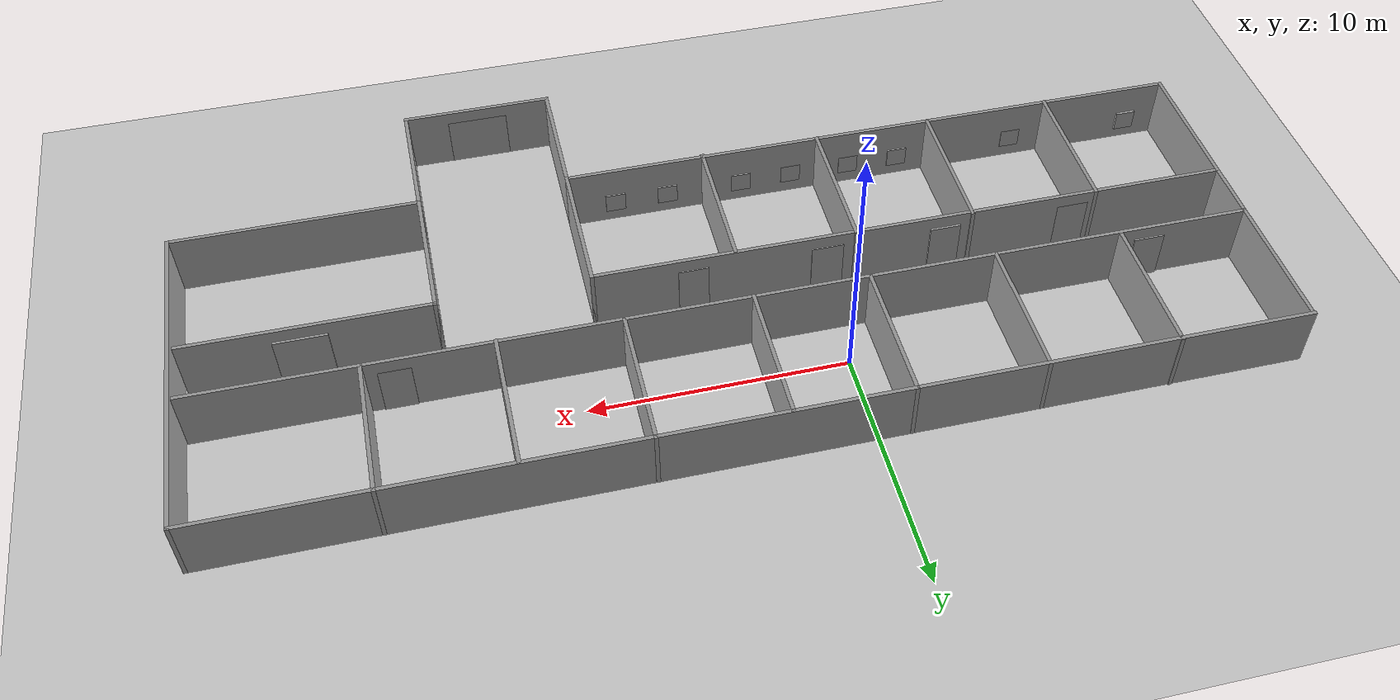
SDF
<sdf version="1.6">
 <world name="default">
  <light name="sun" type="directional">
   <pose>0 0 10 0 -0 0</pose>
   <diffuse>0.8 0.8 0.8 1</diffuse>
   <specular>0.2 0.2 0.2 1</specular>
   <attenuation>
    <range>1000</range>
    <constant>0.9</constant>
    <linear>0.01</linear>
    <quadratic>0.001</quadratic>
   </attenuation>
   <direction>-0.5 0.1 -0.9</direction>
  </light>
  <model name="ground_plane">
   <static>1</static>
   <link name="link">
    <collision name="collision">
     <geometry><plane><normal>0 0 1</normal><size>100 100</size></plane></geometry>
     <surface>
      <contact><collide_bitmask>65535</collide_bitmask></contact>
      <friction><ode><mu>100</mu><mu2>50</mu2></ode></friction>
     </surface>
    </collision>
    <visual name="visual">
     <cast_shadows>0</cast_shadows>
     <geometry><plane><normal>0 0 1</normal><size>100 100</size></plane></geometry>
     <material>
      <script><uri>file://media/materials/scripts/gazebo.material</uri><name>Gazebo/Grey</name></script>
     </material>
    </visual>
   </link>
  </model>
  <gravity>0 0 -9.8</gravity>
  <magnetic_field>6e-06 2.3e-05 -4.2e-05</magnetic_field>
  <atmosphere type="adiabatic"/>
  <physics name="default_physics" default="0" type="ode">
   <max_step_size>0.001</max_step_size>
   <real_time_factor>1</real_time_factor>
   <real_time_update_rate>1000</real_time_update_rate>
  </physics>
  <scene><ambient>0.4 0.4 0.4 1</ambient><background>0.7 0.7 0.7 1</background><shadows>1</shadows></scene>
  <spherical_coordinates>
   <surface_model>EARTH_WGS84</surface_model>
   <latitude_deg>0</latitude_deg>
   <longitude_deg>0</longitude_deg>
   <elevation>0</elevation>
   <heading_deg>0</heading_deg>
  </spherical_coordinates>
  <model name="building_floor1">
   <pose>3.9339 -5.64187 0 0 -0 0</pose>
   <link name="Door_0">
    <collision name="Door_0_Collision">
     <geometry><box><size>1.22365 0.2 2</size></box></geometry>
     <pose>0 0 1 0 -0 0</pose>
    </collision>
    <visual name="Door_0_Visual">
     <pose>0 0 1 0 -0 0</pose>
     <geometry><box><size>1.22365 0.2 2</size></box></geometry>
     <material>
      <script><uri>file://media/materials/scripts/gazebo.material</uri><name>Gazebo/Grey</name></script>
     </material>
    </visual>
    <pose>-16.4454 3.762 0 0 -0 0</pose>
   </link>
   <link name="Door_1">
    <collision name="Door_1_Collision">
     <geometry><box><size>1.06182 0.2 2</size></box></geometry>
     <pose>0 0 1 0 -0 0</pose>
    </collision>
    <visual name="Door_1_Visual">
     <pose>0 0 1 0 -0 0</pose>
     <geometry><box><size>1.06182 0.2 2</size></box></geometry>
     <material>
      <script><uri>file://media/materials/scripts/gazebo.material</uri><name>Gazebo/Grey</name></script>
     </material>
    </visual>
    <pose>-11.5907 3.64064 0 0 -0 0</pose>
   </link>
   <link name="Door_10">
    <collision name="Door_10_Collision">
     <geometry><box><size>1.22365 0.2 2</size></box></geometry>
     <pose>0 0 1 0 -0 0</pose>
    </collision>
    <visual name="Door_10_Visual">
     <pose>0 0 1 0 -0 0</pose>
     <geometry><box><size>1.22365 0.2 2</size></box></geometry>
     <material>
      <script><uri>file://media/materials/scripts/gazebo.material</uri><name>Gazebo/Grey</name></script>
     </material>
    </visual>
    <pose>-8.96112 1.37513 0 0 -0 0</pose>
   </link>
   <link name="Door_11">
    <collision name="Door_11_Collision">
     <geometry><box><size>1.2641 0.2 2</size></box></geometry>
     <pose>0 0 1 0 -0 0</pose>
    </collision>
    <visual name="Door_11_Visual">
     <pose>0 0 1 0 -0 0</pose>
     <geometry><box><size>1.2641 0.2 2</size></box></geometry>
     <material>
      <script><uri>file://media/materials/scripts/gazebo.material</uri><name>Gazebo/Grey</name></script>
     </material>
    </visual>
    <pose>-4.20759 1.33467 0 0 -0 0</pose>
   </link>
   <link name="Door_12">
    <collision name="Door_12_Collision">
     <geometry><box><size>1.18319 0.2 2</size></box></geometry>
     <pose>0 0 1 0 -0 0</pose>
    </collision>
    <visual name="Door_12_Visual">
     <pose>0 0 1 0 -0 0</pose>
     <geometry><box><size>1.18319 0.2 2</size></box></geometry>
     <material>
      <script><uri>file://media/materials/scripts/gazebo.material</uri><name>Gazebo/Grey</name></script>
     </material>
    </visual>
    <pose>1.09209 1.33467 0 0 -0 0</pose>
   </link>
   <link name="Door_13">
    <collision name="Door_13_Collision">
     <geometry><box><size>2.03276 0.2 2</size></box></geometry>
     <pose>0 0 1 0 -0 0</pose>
    </collision>
    <visual name="Door_13_Visual">
     <pose>0 0 1 0 -0 0</pose>
     <geometry><box><size>2.03276 0.2 2</size></box></geometry>
     <material>
      <script><uri>file://media/materials/scripts/gazebo.material</uri><name>Gazebo/Grey</name></script>
     </material>
    </visual>
    <pose>15.8179 1.41558 0 0 -0 0</pose>
   </link>
   <link name="Door_14">
    <collision name="Door_14_Collision">
     <geometry><box><size>2.39686 0.2 2</size></box></geometry>
     <pose>0 0 1 0 -0 0</pose>
    </collision>
    <visual name="Door_14_Visual">
     <pose>0 0 1 0 -0 0</pose>
     <geometry><box><size>2.39686 0.2 2</size></box></geometry>
     <material>
      <script><uri>file://media/materials/scripts/gazebo.material</uri><name>Gazebo/Grey</name></script>
     </material>
    </visual>
    <pose>7.94931 -9.38606 0 0 -0 0</pose>
   </link>
   <link name="Door_2">
    <collision name="Door_2_Collision">
     <geometry><box><size>1.14273 0.2 2</size></box></geometry>
     <pose>0 0 1 0 -0 0</pose>
    </collision>
    <visual name="Door_2_Visual">
     <pose>0 0 1 0 -0 0</pose>
     <geometry><box><size>1.14273 0.2 2</size></box></geometry>
     <material>
      <script><uri>file://media/materials/scripts/gazebo.material</uri><name>Gazebo/Grey</name></script>
     </material>
    </visual>
    <pose>-6.37197 3.68109 0 0 -0 0</pose>
   </link>
   <link name="Door_3">
    <collision name="Door_3_Collision">
     <geometry><box><size>0.940456 0.2 2</size></box></geometry>
     <pose>0 0 1 0 -0 0</pose>
    </collision>
    <visual name="Door_3_Visual">
     <pose>0 0 1 0 -0 0</pose>
     <geometry><box><size>0.940456 0.2 2</size></box></geometry>
     <material>
      <script><uri>file://media/materials/scripts/gazebo.material</uri><name>Gazebo/Grey</name></script>
     </material>
    </visual>
    <pose>-1.67912 3.68109 0 0 -0 0</pose>
   </link>
   <link name="Door_4">
    <collision name="Door_4_Collision">
     <geometry><box><size>1.14273 0.2 2</size></box></geometry>
     <pose>0 0 1 0 -0 0</pose>
    </collision>
    <visual name="Door_4_Visual">
     <pose>0 0 1 0 -0 0</pose>
     <geometry><box><size>1.14273 0.2 2</size></box></geometry>
     <material>
      <script><uri>file://media/materials/scripts/gazebo.material</uri><name>Gazebo/Grey</name></script>
     </material>
    </visual>
    <pose>2.6294 3.64064 0 0 -0 0</pose>
   </link>
   <link name="Door_5">
    <collision name="Door_5_Collision">
     <geometry><box><size>1.02137 0.2 2</size></box></geometry>
     <pose>0 0 1 0 -0 0</pose>
    </collision>
    <visual name="Door_5_Visual">
     <pose>0 0 1 0 -0 0</pose>
     <geometry><box><size>1.02137 0.2 2</size></box></geometry>
     <material>
      <script><uri>file://media/materials/scripts/gazebo.material</uri><name>Gazebo/Grey</name></script>
     </material>
    </visual>
    <pose>7.96954 3.68109 0 0 -0 0</pose>
   </link>
   <link name="Door_6">
    <collision name="Door_6_Collision">
     <geometry><box><size>1.22365 0.2 2</size></box></geometry>
     <pose>0 0 1 0 -0 0</pose>
    </collision>
    <visual name="Door_6_Visual">
     <pose>0 0 1 0 -0 0</pose>
     <geometry><box><size>1.22365 0.2 2</size></box></geometry>
     <material>
      <script><uri>file://media/materials/scripts/gazebo.material</uri><name>Gazebo/Grey</name></script>
     </material>
    </visual>
    <pose>12.6219 3.72155 0 0 -0 0</pose>
   </link>
   <link name="Door_7">
    <collision name="Door_7_Collision">
     <geometry><box><size>1.14273 0.2 2</size></box></geometry>
     <pose>0 0 1 0 -0 0</pose>
    </collision>
    <visual name="Door_7_Visual">
     <pose>0 0 1 0 -0 0</pose>
     <geometry><box><size>1.14273 0.2 2</size></box></geometry>
     <material>
      <script><uri>file://media/materials/scripts/gazebo.material</uri><name>Gazebo/Grey</name></script>
     </material>
    </visual>
    <pose>18.488 3.64064 0 0 -0 0</pose>
   </link>
   <link name="Door_8">
    <collision name="Door_8_Collision">
     <geometry><box><size>1.18319 0.2 2</size></box></geometry>
     <pose>0 0 1 0 -0 0</pose>
    </collision>
    <visual name="Door_8_Visual">
     <pose>0 0 1 0 -0 0</pose>
     <geometry><box><size>1.18319 0.2 2</size></box></geometry>
     <material>
      <script><uri>file://media/materials/scripts/gazebo.material</uri><name>Gazebo/Grey</name></script>
     </material>
    </visual>
    <pose>-18.7918 1.25376 0 0 -0 0</pose>
   </link>
   <link name="Door_9">
    <collision name="Door_9_Collision">
     <geometry><box><size>1.2641 0.2 2</size></box></geometry>
     <pose>0 0 1 0 -0 0</pose>
    </collision>
    <visual name="Door_9_Visual">
     <pose>0 0 1 0 -0 0</pose>
     <geometry><box><size>1.2641 0.2 2</size></box></geometry>
     <material>
      <script><uri>file://media/materials/scripts/gazebo.material</uri><name>Gazebo/Grey</name></script>
     </material>
    </visual>
    <pose>-14.2608 1.29421 0 0 -0 0</pose>
   </link>
   <link name="Wall_11">
    <collision name="Wall_11_Collision">
     <geometry><box><size>40.75 0.15 2.5</size></box></geometry>
     <pose>0 0 1.25 0 -0 0</pose>
    </collision>
    <visual name="Wall_11_Visual">
     <pose>0 0 1.25 0 -0 0</pose>
     <geometry><box><size>40.75 0.15 2.5</size></box></geometry>
     <material>
      <script><uri>file://media/materials/scripts/gazebo.material</uri><name>Gazebo/Grey</name></script>
      <ambient>1 1 1 1</ambient>
     </material>
     <meta><layer>0</layer></meta>
    </visual>
    <pose>-0.075 3.71145 0 0 -0 0</pose>
   </link>
   <link name="Wall_13">
    <collision name="Wall_13_Collision">
     <geometry><box><size>25.5 0.15 2.5</size></box></geometry>
     <pose>0 0 1.25 0 -0 0</pose>
    </collision>
    <visual name="Wall_13_Visual">
     <pose>0 0 1.25 0 -0 0</pose>
     <geometry><box><size>25.5 0.15 2.5</size></box></geometry>
     <material>
      <script><uri>file://media/materials/scripts/gazebo.material</uri><name>Gazebo/Grey</name></script>
      <ambient>1 1 1 1</ambient>
     </material>
     <meta><layer>0</layer></meta>
    </visual>
    <pose>-7.7 1.30384 0 0 -0 0</pose>
   </link>
   <link name="Wall_14">
    <collision name="Wall_14_Collision">
     <geometry><box><size>5.75 0.15 2.5</size></box></geometry>
     <pose>0 0 1.25 0 -0 0</pose>
    </collision>
    <visual name="Wall_14_Visual">
     <pose>0 0 1.25 0 -0 0</pose>
     <geometry><box><size>5.75 0.15 2.5</size></box></geometry>
     <material>
      <script><uri>file://media/materials/scripts/gazebo.material</uri><name>Gazebo/Grey</name></script>
      <ambient>1 1 1 1</ambient>
     </material>
     <meta><layer>0</layer></meta>
    </visual>
    <pose>4.975 -1.49616 0 0 -0 -1.5708</pose>
   </link>
   <link name="Wall_16">
    <collision name="Wall_16_Collision">
     <geometry><box><size>5.75 0.15 2.5</size></box></geometry>
     <pose>0 0 1.25 0 -0 0</pose>
    </collision>
    <visual name="Wall_16_Visual">
     <pose>0 0 1.25 0 -0 0</pose>
     <geometry><box><size>5.75 0.15 2.5</size></box></geometry>
     <material>
      <script><uri>file://media/materials/scripts/gazebo.material</uri><name>Gazebo/Grey</name></script>
      <ambient>1 1 1 1</ambient>
     </material>
     <meta><layer>0</layer></meta>
    </visual>
    <pose>10.825 -1.47078 0 0 -0 1.5708</pose>
   </link>
   <link name="Wall_17">
    <collision name="Wall_17_Collision">
     <geometry><box><size>9.5 0.15 2.5</size></box></geometry>
     <pose>0 0 1.25 0 -0 0</pose>
    </collision>
    <visual name="Wall_17_Visual">
     <pose>0 0 1.25 0 -0 0</pose>
     <geometry><box><size>9.5 0.15 2.5</size></box></geometry>
     <material>
      <script><uri>file://media/materials/scripts/gazebo.material</uri><name>Gazebo/Grey</name></script>
      <ambient>1 1 1 1</ambient>
     </material>
     <meta><layer>0</layer></meta>
    </visual>
    <pose>15.5 1.32922 0 0 -0 0</pose>
   </link>
   <link name="Wall_19">
    <collision name="Wall_19_Collision">
     <geometry><box><size>5.75 0.15 2.5</size></box></geometry>
     <pose>0 0 1.25 0 -0 0</pose>
    </collision>
    <visual name="Wall_19_Visual">
     <pose>0 0 1.25 0 -0 0</pose>
     <geometry><box><size>5.75 0.15 2.5</size></box></geometry>
     <material>
      <script><uri>file://media/materials/scripts/gazebo.material</uri><name>Gazebo/Grey</name></script>
      <ambient>1 1 1 1</ambient>
     </material>
     <meta><layer>0</layer></meta>
    </visual>
    <pose>-15.1953 6.57078 0 0 -0 -1.5708</pose>
   </link>
   <link name="Wall_2">
    <collision name="Wall_2_Collision">
     <geometry><box><size>13.75 0.15 2.5</size></box></geometry>
     <pose>0 0 1.25 0 -0 0</pose>
    </collision>
    <visual name="Wall_2_Visual">
     <pose>0 0 1.25 0 -0 0</pose>
     <geometry><box><size>13.75 0.15 2.5</size></box></geometry>
     <material>
      <script><uri>file://media/materials/scripts/gazebo.material</uri><name>Gazebo/Grey</name></script>
      <ambient>1 1 1 1</ambient>
     </material>
     <meta><layer>0</layer></meta>
    </visual>
    <pose>-20.375 2.52922 0 0 -0 -1.5708</pose>
   </link>
   <link name="Wall_21">
    <collision name="Wall_21_Collision">
     <geometry><box><size>5.75 0.15 2.5</size></box></geometry>
     <pose>0 0 1.25 0 -0 0</pose>
    </collision>
    <visual name="Wall_21_Visual">
     <pose>0 0 1.25 0 -0 0</pose>
     <geometry><box><size>5.75 0.15 2.5</size></box></geometry>
     <material>
      <script><uri>file://media/materials/scripts/gazebo.material</uri><name>Gazebo/Grey</name></script>
      <ambient>1 1 1 1</ambient>
     </material>
     <meta><layer>0</layer></meta>
    </visual>
    <pose>-10.1384 6.53033 0 0 -0 -1.5708</pose>
   </link>
   <link name="Wall_23">
    <collision name="Wall_23_Collision">
     <geometry><box><size>5.75 0.15 2.5</size></box></geometry>
     <pose>0 0 1.25 0 -0 0</pose>
    </collision>
    <visual name="Wall_23_Visual">
     <pose>0 0 1.25 0 -0 0</pose>
     <geometry><box><size>5.75 0.15 2.5</size></box></geometry>
     <material>
      <script><uri>file://media/materials/scripts/gazebo.material</uri><name>Gazebo/Grey</name></script>
      <ambient>1 1 1 1</ambient>
     </material>
     <meta><layer>0</layer></meta>
    </visual>
    <pose>-5.17266 6.54007 0 0 -0 -1.5708</pose>
   </link>
   <link name="Wall_25">
    <collision name="Wall_25_Collision">
     <geometry><box><size>5.75 0.15 2.5</size></box></geometry>
     <pose>0 0 1.25 0 -0 0</pose>
    </collision>
    <visual name="Wall_25_Visual">
     <pose>0 0 1.25 0 -0 0</pose>
     <geometry><box><size>5.75 0.15 2.5</size></box></geometry>
     <material>
      <script><uri>file://media/materials/scripts/gazebo.material</uri><name>Gazebo/Grey</name></script>
      <ambient>1 1 1 1</ambient>
     </material>
     <meta><layer>0</layer></meta>
    </visual>
    <pose>-0.678453 6.48657 0 0 -0 -1.5708</pose>
   </link>
   <link name="Wall_27">
    <collision name="Wall_27_Collision">
     <geometry><box><size>5.75 0.15 2.5</size></box></geometry>
     <pose>0 0 1.25 0 -0 0</pose>
    </collision>
    <visual name="Wall_27_Visual">
     <pose>0 0 1.25 0 -0 0</pose>
     <geometry><box><size>5.75 0.15 2.5</size></box></geometry>
     <material>
      <script><uri>file://media/materials/scripts/gazebo.material</uri><name>Gazebo/Grey</name></script>
      <ambient>1 1 1 1</ambient>
     </material>
     <meta><layer>0</layer></meta>
    </visual>
    <pose>4.19027 6.54007 0 0 -0 -1.5708</pose>
   </link>
   <link name="Wall_29">
    <collision name="Wall_29_Collision">
     <geometry><box><size>5.75 0.15 2.5</size></box></geometry>
     <pose>0 0 1.25 0 -0 0</pose>
    </collision>
    <visual name="Wall_29_Visual">
     <pose>0 0 1.25 0 -0 0</pose>
     <geometry><box><size>5.75 0.15 2.5</size></box></geometry>
     <material>
      <script><uri>file://media/materials/scripts/gazebo.material</uri><name>Gazebo/Grey</name></script>
      <ambient>1 1 1 1</ambient>
     </material>
     <meta><layer>0</layer></meta>
    </visual>
    <pose>8.8985 6.48657 0 0 -0 -1.5708</pose>
   </link>
   <link name="Wall_3">
    <collision name="Wall_3_Collision">
     <geometry><box><size>25.5 0.15 2.5</size></box></geometry>
     <pose>0 0 1.25 0 -0 0</pose>
    </collision>
    <visual name="Wall_3_Visual">
     <pose>0 0 1.25 0 -0 0</pose>
     <geometry><box><size>25.5 0.15 2.5</size></box></geometry>
     <material>
      <script><uri>file://media/materials/scripts/gazebo.material</uri><name>Gazebo/Grey</name></script>
      <ambient>1 1 1 1</ambient>
     </material>
     <meta><layer>0</layer></meta>
    </visual>
    <pose>-7.7 -4.27078 0 0 -0 0</pose>
   </link>
   <link name="Wall_31">
    <collision name="Wall_31_Collision">
     <geometry><box><size>5.75 0.15 2.5</size></box></geometry>
     <pose>0 0 1.25 0 -0 0</pose>
    </collision>
    <visual name="Wall_31_Visual">
     <pose>0 0 1.25 0 -0 0</pose>
     <geometry><box><size>5.75 0.15 2.5</size></box></geometry>
     <material>
      <script><uri>file://media/materials/scripts/gazebo.material</uri><name>Gazebo/Grey</name></script>
      <ambient>1 1 1 1</ambient>
     </material>
     <meta><layer>0</layer></meta>
    </visual>
    <pose>13.7672 6.54007 0 0 -0 -1.5708</pose>
   </link>
   <link name="Wall_33">
    <collision name="Wall_33_Collision">
     <geometry><box><size>5.75 0.15 2.5</size></box></geometry>
     <pose>0 0 1.25 0 -0 0</pose>
    </collision>
    <visual name="Wall_33_Visual">
     <pose>0 0 1.25 0 -0 0</pose>
     <geometry><box><size>5.75 0.15 2.5</size></box></geometry>
     <material>
      <script><uri>file://media/materials/scripts/gazebo.material</uri><name>Gazebo/Grey</name></script>
      <ambient>1 1 1 1</ambient>
     </material>
     <meta><layer>0</layer></meta>
    </visual>
    <pose>-15.1776 -1.4853 0 0 -0 -1.5708</pose>
   </link>
   <link name="Wall_35">
    <collision name="Wall_35_Collision">
     <geometry><box><size>5.75 0.15 2.5</size></box></geometry>
     <pose>0 0 1.25 0 -0 0</pose>
    </collision>
    <visual name="Wall_35_Visual">
     <pose>0 0 1.25 0 -0 0</pose>
     <geometry><box><size>5.75 0.15 2.5</size></box></geometry>
     <material>
      <script><uri>file://media/materials/scripts/gazebo.material</uri><name>Gazebo/Grey</name></script>
      <ambient>1 1 1 1</ambient>
     </material>
     <meta><layer>0</layer></meta>
    </visual>
    <pose>-10.0414 -1.4318 0 0 -0 -1.5708</pose>
   </link>
   <link name="Wall_37">
    <collision name="Wall_37_Collision">
     <geometry><box><size>5.75 0.15 2.5</size></box></geometry>
     <pose>0 0 1.25 0 -0 0</pose>
    </collision>
    <visual name="Wall_37_Visual">
     <pose>0 0 1.25 0 -0 0</pose>
     <geometry><box><size>5.75 0.15 2.5</size></box></geometry>
     <material>
      <script><uri>file://media/materials/scripts/gazebo.material</uri><name>Gazebo/Grey</name></script>
      <ambient>1 1 1 1</ambient>
     </material>
     <meta><layer>0</layer></meta>
    </visual>
    <pose>-5.33317 -1.4853 0 0 -0 -1.5708</pose>
   </link>
   <link name="Wall_39">
    <collision name="Wall_39_Collision">
     <geometry><box><size>5.75 0.15 2.5</size></box></geometry>
     <pose>0 0 1.25 0 -0 0</pose>
    </collision>
    <visual name="Wall_39_Visual">
     <pose>0 0 1.25 0 -0 0</pose>
     <geometry><box><size>5.75 0.15 2.5</size></box></geometry>
     <material>
      <script><uri>file://media/materials/scripts/gazebo.material</uri><name>Gazebo/Grey</name></script>
      <ambient>1 1 1 1</ambient>
     </material>
     <meta><layer>0</layer></meta>
    </visual>
    <pose>-0.571448 -1.53881 0 0 -0 -1.5708</pose>
   </link>
   <link name="Wall_4">
    <collision name="Wall_4_Collision">
     <geometry><box><size>5.25 0.15 2.5</size></box></geometry>
     <pose>0 0 1.25 0 -0 0</pose>
    </collision>
    <visual name="Wall_4_Visual">
     <pose>0 0 1.25 0 -0 0</pose>
     <geometry><box><size>5.25 0.15 2.5</size></box></geometry>
     <material>
      <script><uri>file://media/materials/scripts/gazebo.material</uri><name>Gazebo/Grey</name></script>
      <ambient>1 1 1 1</ambient>
     </material>
     <meta><layer>0</layer></meta>
    </visual>
    <pose>4.975 -6.82078 0 0 -0 -1.5708</pose>
   </link>
   <link name="Wall_5">
    <collision name="Wall_5_Collision">
     <geometry><box><size>6 0.15 2.5</size></box></geometry>
     <pose>0 0 1.25 0 -0 0</pose>
    </collision>
    <visual name="Wall_5_Visual">
     <pose>0 0 1.25 0 -0 0</pose>
     <geometry><box><size>6 0.15 2.5</size></box></geometry>
     <material>
      <script><uri>file://media/materials/scripts/gazebo.material</uri><name>Gazebo/Grey</name></script>
      <ambient>1 1 1 1</ambient>
     </material>
     <meta><layer>0</layer></meta>
    </visual>
    <pose>7.9 -9.37078 0 0 -0 0</pose>
   </link>
   <link name="Wall_6">
    <collision name="Wall_6_Collision">
     <geometry><box><size>5.25 0.15 2.5</size></box></geometry>
     <pose>0 0 1.25 0 -0 0</pose>
    </collision>
    <visual name="Wall_6_Visual">
     <pose>0 0 1.25 0 -0 0</pose>
     <geometry><box><size>5.25 0.15 2.5</size></box></geometry>
     <material>
      <script><uri>file://media/materials/scripts/gazebo.material</uri><name>Gazebo/Grey</name></script>
      <ambient>1 1 1 1</ambient>
     </material>
     <meta><layer>0</layer></meta>
    </visual>
    <pose>10.825 -6.82078 0 0 -0 1.5708</pose>
   </link>
   <link name="Wall_7">
    <collision name="Wall_7_Collision">
     <geometry><box><size>9.75 0.15 2.5</size></box></geometry>
     <pose>0 0 1.25 0 -0 0</pose>
    </collision>
    <visual name="Wall_7_Visual">
     <pose>0 0 1.25 0 -0 0</pose>
     <geometry><box><size>9.75 0.15 2.5</size></box></geometry>
     <material>
      <script><uri>file://media/materials/scripts/gazebo.material</uri><name>Gazebo/Grey</name></script>
      <ambient>1 1 1 1</ambient>
     </material>
     <meta><layer>0</layer></meta>
    </visual>
    <pose>15.625 -4.27078 0 0 -0 0</pose>
   </link>
   <link name="Wall_8">
    <collision name="Wall_8_Collision">
     <geometry><box><size>13.75 0.15 2.5</size></box></geometry>
     <pose>0 0 1.25 0 -0 0</pose>
    </collision>
    <visual name="Wall_8_Visual">
     <pose>0 0 1.25 0 -0 0</pose>
     <geometry><box><size>13.75 0.15 2.5</size></box></geometry>
     <material>
      <script><uri>file://media/materials/scripts/gazebo.material</uri><name>Gazebo/Grey</name></script>
      <ambient>1 1 1 1</ambient>
     </material>
     <meta><layer>0</layer></meta>
    </visual>
    <pose>20.425 2.52922 0 0 -0 1.5708</pose>
   </link>
   <link name="Wall_9">
    <collision name="Wall_9_Collision">
     <geometry><box><size>41 0.15 2.5</size></box></geometry>
     <pose>0 0 1.25 0 -0 0</pose>
    </collision>
    <visual name="Wall_9_Visual">
     <pose>0 0 1.25 0 -0 0</pose>
     <geometry><box><size>41 0.15 2.5</size></box></geometry>
     <material>
      <script><uri>file://media/materials/scripts/gazebo.material</uri><name>Gazebo/Grey</name></script>
      <ambient>1 1 1 1</ambient>
     </material>
     <meta><layer>0</layer></meta>
    </visual>
    <pose>-0 9.32922 0 0 -0 3.14159</pose>
   </link>
   <link name="Window_0">
    <collision name="Window_0_Collision">
     <geometry><box><size>0.8 0.17 0.8</size></box></geometry>
     <pose>0 0 0.4 0 -0 0</pose>
    </collision>
    <visual name="Window_0_Visual">
     <pose>0 0 0.4 0 -0 0</pose>
     <geometry><box><size>0.8 0.17 0.8</size></box></geometry>
     <material>
      <script><uri>file://media/materials/scripts/gazebo.material</uri><name>Gazebo/Grey</name></script>
     </material>
    </visual>
    <pose>-18.9941 -4.16729 0.5 0 -0 0</pose>
   </link>
   <link name="Window_1">
    <collision name="Window_1_Collision">
     <geometry><box><size>0.8 0.17 0.8</size></box></geometry>
     <pose>0 0 0.4 0 -0 0</pose>
    </collision>
    <visual name="Window_1_Visual">
     <pose>0 0 0.4 0 -0 0</pose>
     <geometry><box><size>0.8 0.17 0.8</size></box></geometry>
     <material>
      <script><uri>file://media/materials/scripts/gazebo.material</uri><name>Gazebo/Grey</name></script>
     </material>
    </visual>
    <pose>-13.8158 -4.2482 0.5 0 -0 0</pose>
   </link>
   <link name="Window_10">
    <collision name="Window_10_Collision">
     <geometry><box><size>0.8 0.17 0.8</size></box></geometry>
     <pose>0 0 0.4 0 -0 0</pose>
    </collision>
    <visual name="Window_10_Visual">
     <pose>0 0 0.4 0 -0 0</pose>
     <geometry><box><size>0.8 0.17 0.8</size></box></geometry>
     <material>
      <script><uri>file://media/materials/scripts/gazebo.material</uri><name>Gazebo/Grey</name></script>
     </material>
    </visual>
    <pose>-18.63 9.26396 0.5 0 -0 0</pose>
   </link>
   <link name="Window_11">
    <collision name="Window_11_Collision">
     <geometry><box><size>0.8 0.17 0.8</size></box></geometry>
     <pose>0 0 0.4 0 -0 0</pose>
    </collision>
    <visual name="Window_11_Visual">
     <pose>0 0 0.4 0 -0 0</pose>
     <geometry><box><size>0.8 0.17 0.8</size></box></geometry>
     <material>
      <script><uri>file://media/materials/scripts/gazebo.material</uri><name>Gazebo/Grey</name></script>
     </material>
    </visual>
    <pose>-16.5263 9.26396 0.5 0 -0 0</pose>
   </link>
   <link name="Window_12">
    <collision name="Window_12_Collision">
     <geometry><box><size>0.8 0.17 0.8</size></box></geometry>
     <pose>0 0 0.4 0 -0 0</pose>
    </collision>
    <visual name="Window_12_Visual">
     <pose>0 0 0.4 0 -0 0</pose>
     <geometry><box><size>0.8 0.17 0.8</size></box></geometry>
     <material>
      <script><uri>file://media/materials/scripts/gazebo.material</uri><name>Gazebo/Grey</name></script>
     </material>
    </visual>
    <pose>-13.3303 9.22351 0.5 0 -0 0</pose>
   </link>
   <link name="Window_13">
    <collision name="Window_13_Collision">
     <geometry><box><size>0.8 0.17 0.8</size></box></geometry>
     <pose>0 0 0.4 0 -0 0</pose>
    </collision>
    <visual name="Window_13_Visual">
     <pose>0 0 0.4 0 -0 0</pose>
     <geometry><box><size>0.8 0.17 0.8</size></box></geometry>
     <material>
      <script><uri>file://media/materials/scripts/gazebo.material</uri><name>Gazebo/Grey</name></script>
     </material>
    </visual>
    <pose>-11.1862 9.26396 0.5 0 -0 0</pose>
   </link>
   <link name="Window_14">
    <collision name="Window_14_Collision">
     <geometry><box><size>0.8 0.17 0.8</size></box></geometry>
     <pose>0 0 0.4 0 -0 0</pose>
    </collision>
    <visual name="Window_14_Visual">
     <pose>0 0 0.4 0 -0 0</pose>
     <geometry><box><size>0.8 0.17 0.8</size></box></geometry>
     <material>
      <script><uri>file://media/materials/scripts/gazebo.material</uri><name>Gazebo/Grey</name></script>
     </material>
    </visual>
    <pose>-8.27338 9.26396 0.5 0 -0 0</pose>
   </link>
   <link name="Window_15">
    <collision name="Window_15_Collision">
     <geometry><box><size>0.8 0.17 0.8</size></box></geometry>
     <pose>0 0 0.4 0 -0 0</pose>
    </collision>
    <visual name="Window_15_Visual">
     <pose>0 0 0.4 0 -0 0</pose>
     <geometry><box><size>0.8 0.17 0.8</size></box></geometry>
     <material>
      <script><uri>file://media/materials/scripts/gazebo.material</uri><name>Gazebo/Grey</name></script>
     </material>
    </visual>
    <pose>-6.08983 9.22221 0.5 0 -0 0</pose>
   </link>
   <link name="Window_16">
    <collision name="Window_16_Collision">
     <geometry><box><size>0.8 0.17 0.8</size></box></geometry>
     <pose>0 0 0.4 0 -0 0</pose>
    </collision>
    <visual name="Window_16_Visual">
     <pose>0 0 0.4 0 -0 0</pose>
     <geometry><box><size>0.8 0.17 0.8</size></box></geometry>
     <material>
      <script><uri>file://media/materials/scripts/gazebo.material</uri><name>Gazebo/Grey</name></script>
     </material>
    </visual>
    <pose>-3.41471 9.22221 0.5 0 -0 0</pose>
   </link>
   <link name="Window_17">
    <collision name="Window_17_Collision">
     <geometry><box><size>0.8 0.17 0.8</size></box></geometry>
     <pose>0 0 0.4 0 -0 0</pose>
    </collision>
    <visual name="Window_17_Visual">
     <pose>0 0 0.4 0 -0 0</pose>
     <geometry><box><size>0.8 0.17 0.8</size></box></geometry>
     <material>
      <script><uri>file://media/materials/scripts/gazebo.material</uri><name>Gazebo/Grey</name></script>
     </material>
    </visual>
    <pose>-1.38161 9.22221 0.5 0 -0 0</pose>
   </link>
   <link name="Window_18">
    <collision name="Window_18_Collision">
     <geometry><box><size>0.8 0.17 0.8</size></box></geometry>
     <pose>0 0 0.4 0 -0 0</pose>
    </collision>
    <visual name="Window_18_Visual">
     <pose>0 0 0.4 0 -0 0</pose>
     <geometry><box><size>0.8 0.17 0.8</size></box></geometry>
     <material>
      <script><uri>file://media/materials/scripts/gazebo.material</uri><name>Gazebo/Grey</name></script>
     </material>
    </visual>
    <pose>1.026 9.27572 0.5 0 -0 0</pose>
   </link>
   <link name="Window_19">
    <collision name="Window_19_Collision">
     <geometry><box><size>0.8 0.17 0.8</size></box></geometry>
     <pose>0 0 0.4 0 -0 0</pose>
    </collision>
    <visual name="Window_19_Visual">
     <pose>0 0 0.4 0 -0 0</pose>
     <geometry><box><size>0.8 0.17 0.8</size></box></geometry>
     <material>
      <script><uri>file://media/materials/scripts/gazebo.material</uri><name>Gazebo/Grey</name></script>
     </material>
    </visual>
    <pose>3.2196 9.27572 0.5 0 -0 0</pose>
   </link>
   <link name="Window_2">
    <collision name="Window_2_Collision">
     <geometry><box><size>0.8 0.17 0.8</size></box></geometry>
     <pose>0 0 0.4 0 -0 0</pose>
    </collision>
    <visual name="Window_2_Visual">
     <pose>0 0 0.4 0 -0 0</pose>
     <geometry><box><size>0.8 0.17 0.8</size></box></geometry>
     <material>
      <script><uri>file://media/materials/scripts/gazebo.material</uri><name>Gazebo/Grey</name></script>
     </material>
    </visual>
    <pose>-16.85 -4.28866 0.5 0 -0 0</pose>
   </link>
   <link name="Window_20">
    <collision name="Window_20_Collision">
     <geometry><box><size>0.8 0.17 0.8</size></box></geometry>
     <pose>0 0 0.4 0 -0 0</pose>
    </collision>
    <visual name="Window_20_Visual">
     <pose>0 0 0.4 0 -0 0</pose>
     <geometry><box><size>0.8 0.17 0.8</size></box></geometry>
     <material>
      <script><uri>file://media/materials/scripts/gazebo.material</uri><name>Gazebo/Grey</name></script>
     </material>
    </visual>
    <pose>5.94823 9.22221 0.5 0 -0 0</pose>
   </link>
   <link name="Window_21">
    <collision name="Window_21_Collision">
     <geometry><box><size>0.8 0.17 0.8</size></box></geometry>
     <pose>0 0 0.4 0 -0 0</pose>
    </collision>
    <visual name="Window_21_Visual">
     <pose>0 0 0.4 0 -0 0</pose>
     <geometry><box><size>0.8 0.17 0.8</size></box></geometry>
     <material>
      <script><uri>file://media/materials/scripts/gazebo.material</uri><name>Gazebo/Grey</name></script>
     </material>
    </visual>
    <pose>8.08833 9.22221 0.5 0 -0 0</pose>
   </link>
   <link name="Window_22">
    <collision name="Window_22_Collision">
     <geometry><box><size>0.8 0.17 0.8</size></box></geometry>
     <pose>0 0 0.4 0 -0 0</pose>
    </collision>
    <visual name="Window_22_Visual">
     <pose>0 0 0.4 0 -0 0</pose>
     <geometry><box><size>0.8 0.17 0.8</size></box></geometry>
     <material>
      <script><uri>file://media/materials/scripts/gazebo.material</uri><name>Gazebo/Grey</name></script>
     </material>
    </visual>
    <pose>10.4959 9.22221 0.5 0 -0 0</pose>
   </link>
   <link name="Window_23">
    <collision name="Window_23_Collision">
     <geometry><box><size>0.8 0.17 0.8</size></box></geometry>
     <pose>0 0 0.4 0 -0 0</pose>
    </collision>
    <visual name="Window_23_Visual">
     <pose>0 0 0.4 0 -0 0</pose>
     <geometry><box><size>0.8 0.17 0.8</size></box></geometry>
     <material>
      <script><uri>file://media/materials/scripts/gazebo.material</uri><name>Gazebo/Grey</name></script>
     </material>
    </visual>
    <pose>12.6895 9.16871 0.5 0 -0 0</pose>
   </link>
   <link name="Window_24">
    <collision name="Window_24_Collision">
     <geometry><box><size>0.8 0.17 0.8</size></box></geometry>
     <pose>0 0 0.4 0 -0 0</pose>
    </collision>
    <visual name="Window_24_Visual">
     <pose>0 0 0.4 0 -0 0</pose>
     <geometry><box><size>0.8 0.17 0.8</size></box></geometry>
     <material>
      <script><uri>file://media/materials/scripts/gazebo.material</uri><name>Gazebo/Grey</name></script>
     </material>
    </visual>
    <pose>16.0602 9.22221 0.5 0 -0 0</pose>
   </link>
   <link name="Window_25">
    <collision name="Window_25_Collision">
     <geometry><box><size>0.8 0.17 0.8</size></box></geometry>
     <pose>0 0 0.4 0 -0 0</pose>
    </collision>
    <visual name="Window_25_Visual">
     <pose>0 0 0.4 0 -0 0</pose>
     <geometry><box><size>0.8 0.17 0.8</size></box></geometry>
     <material>
      <script><uri>file://media/materials/scripts/gazebo.material</uri><name>Gazebo/Grey</name></script>
     </material>
    </visual>
    <pose>18.2003 9.22221 0.5 0 -0 0</pose>
   </link>
   <link name="Window_3">
    <collision name="Window_3_Collision">
     <geometry><box><size>0.8 0.17 0.8</size></box></geometry>
     <pose>0 0 0.4 0 -0 0</pose>
    </collision>
    <visual name="Window_3_Visual">
     <pose>0 0 0.4 0 -0 0</pose>
     <geometry><box><size>0.8 0.17 0.8</size></box></geometry>
     <material>
      <script><uri>file://media/materials/scripts/gazebo.material</uri><name>Gazebo/Grey</name></script>
     </material>
    </visual>
    <pose>-11.6312 -4.28866 0.5 0 -0 0</pose>
   </link>
   <link name="Window_4">
    <collision name="Window_4_Collision">
     <geometry><box><size>0.8 0.17 0.8</size></box></geometry>
     <pose>0 0 0.4 0 -0 0</pose>
    </collision>
    <visual name="Window_4_Visual">
     <pose>0 0 0.4 0 -0 0</pose>
     <geometry><box><size>0.8 0.17 0.8</size></box></geometry>
     <material>
      <script><uri>file://media/materials/scripts/gazebo.material</uri><name>Gazebo/Grey</name></script>
     </material>
    </visual>
    <pose>-8.7993 -4.20774 0.5 0 -0 0</pose>
   </link>
   <link name="Window_5">
    <collision name="Window_5_Collision">
     <geometry><box><size>0.8 0.17 0.8</size></box></geometry>
     <pose>0 0 0.4 0 -0 0</pose>
    </collision>
    <visual name="Window_5_Visual">
     <pose>0 0 0.4 0 -0 0</pose>
     <geometry><box><size>0.8 0.17 0.8</size></box></geometry>
     <material>
      <script><uri>file://media/materials/scripts/gazebo.material</uri><name>Gazebo/Grey</name></script>
     </material>
    </visual>
    <pose>-6.69561 -4.2482 0.5 0 -0 0</pose>
   </link>
   <link name="Window_6">
    <collision name="Window_6_Collision">
     <geometry><box><size>0.8 0.17 0.8</size></box></geometry>
     <pose>0 0 0.4 0 -0 0</pose>
    </collision>
    <visual name="Window_6_Visual">
     <pose>0 0 0.4 0 -0 0</pose>
     <geometry><box><size>0.8 0.17 0.8</size></box></geometry>
     <material>
      <script><uri>file://media/materials/scripts/gazebo.material</uri><name>Gazebo/Grey</name></script>
     </material>
    </visual>
    <pose>-4.22782 -4.2482 0.5 0 -0 0</pose>
   </link>
   <link name="Window_7">
    <collision name="Window_7_Collision">
     <geometry><box><size>0.8 0.17 0.8</size></box></geometry>
     <pose>0 0 0.4 0 -0 0</pose>
    </collision>
    <visual name="Window_7_Visual">
     <pose>0 0 0.4 0 -0 0</pose>
     <geometry><box><size>0.8 0.17 0.8</size></box></geometry>
     <material>
      <script><uri>file://media/materials/scripts/gazebo.material</uri><name>Gazebo/Grey</name></script>
     </material>
    </visual>
    <pose>-2.12413 -4.20774 0.5 0 -0 0</pose>
   </link>
   <link name="Window_8">
    <collision name="Window_8_Collision">
     <geometry><box><size>0.8 0.17 0.8</size></box></geometry>
     <pose>0 0 0.4 0 -0 0</pose>
    </collision>
    <visual name="Window_8_Visual">
     <pose>0 0 0.4 0 -0 0</pose>
     <geometry><box><size>0.8 0.17 0.8</size></box></geometry>
     <material>
      <script><uri>file://media/materials/scripts/gazebo.material</uri><name>Gazebo/Grey</name></script>
     </material>
    </visual>
    <pose>0.950495 -4.20774 0.5 0 -0 0</pose>
   </link>
   <link name="Window_9">
    <collision name="Window_9_Collision">
     <geometry><box><size>0.8 0.17 0.8</size></box></geometry>
     <pose>0 0 0.4 0 -0 0</pose>
    </collision>
    <visual name="Window_9_Visual">
     <pose>0 0 0.4 0 -0 0</pose>
     <geometry><box><size>0.8 0.17 0.8</size></box></geometry>
     <material>
      <script><uri>file://media/materials/scripts/gazebo.material</uri><name>Gazebo/Grey</name></script>
     </material>
    </visual>
    <pose>3.09464 -4.20774 0.5 0 -0 0</pose>
   </link>
   <static>1</static>
  </model>
 </world>
</sdf>
